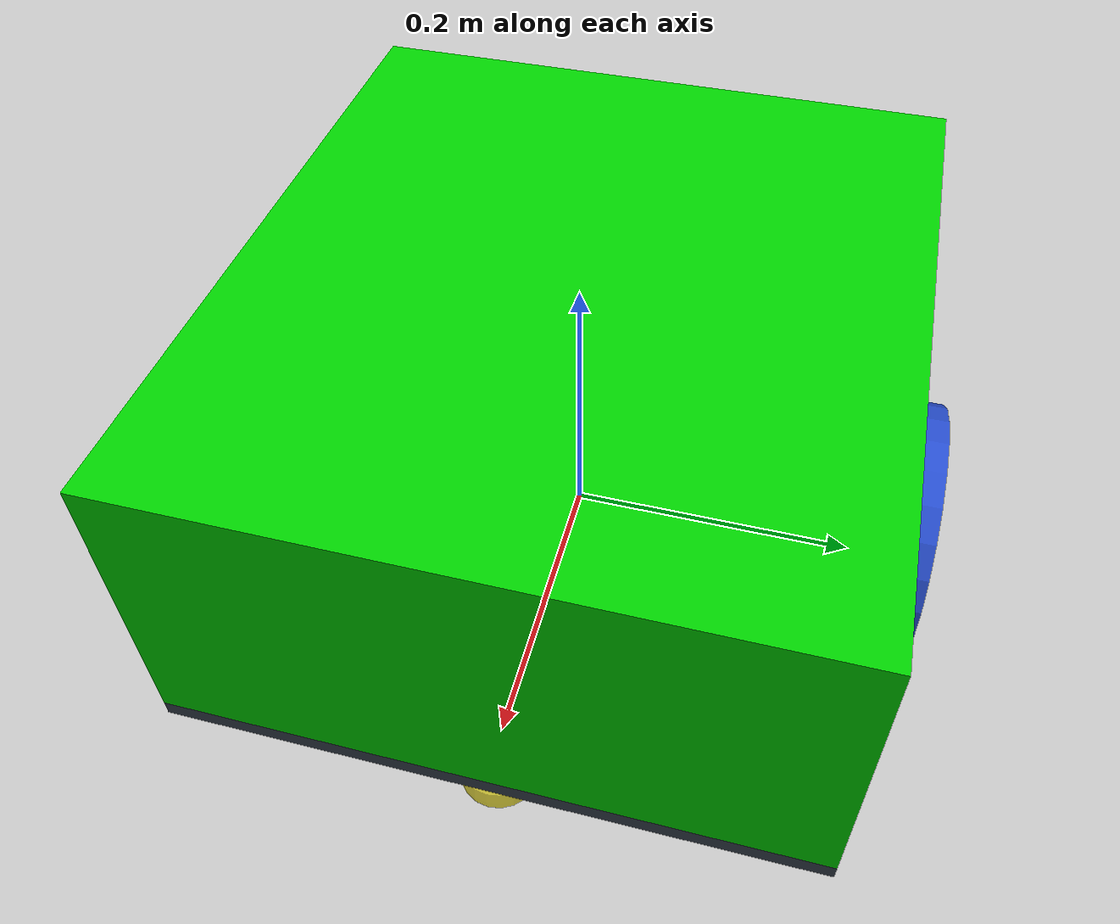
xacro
<?xml version="1.0" ?>
<robot name="mouse" xmlns:xacro="http://www.ros.org/wiki/xacro">
  <material name="black">
    <color rgba="0.0 0.0 0.0 1.0"/>
  </material>
  <material name="blue">
    <color rgba="0.203125 0.23828125 0.28515625 1.0"/>
  </material>
  <material name="green">
    <color rgba="0.0 0.8 0.0 1.0"/>
  </material>
  <material name="grey">
    <color rgba="0.2 0.2 0.2 1.0"/>
  </material>
  <material name="orange">
    <color rgba="1.0 0.423529411765 0.0392156862745 1.0"/>
  </material>
  <material name="brown">
    <color rgba="0.870588235294 0.811764705882 0.764705882353 1.0"/>
  </material>
  <material name="red">
    <color rgba="0.80078125 0.12890625 0.1328125 1.0"/>
  </material>
  <material name="white">
    <color rgba="1.0 1.0 1.0 1.0"/>
  </material>

  <gazebo reference="link_chassis">
    <material>Gazebo/Orange</material>
  </gazebo>
  <gazebo reference="link_caster">
    <material>Gazebo/Gray</material>
  </gazebo>
  <gazebo reference="link_left_wheel">
    <material>Gazebo/Blue</material>
  </gazebo>
  <gazebo reference="link_right_wheel">
    <material>Gazebo/Blue</material>
  </gazebo>

  <!-- ROBOT DESCRIPTION -->
  <!-- Chassis -->
  <link name="chassis_base">
    <collision name="collision_chassis">
      <origin rpy="0 0 0" xyz="0 0 0"/>
      <geometry>
        <box size="0.48 0.432 0.012"/>
      </geometry>
    </collision>
    <visual>
      <origin rpy="0 0 0" xyz="0 0 0"/>
      <geometry>
        <box size="0.48 0.432 0.012"/>
      </geometry>
      <material name="blue"/>
    </visual>
  </link>

  <link name="chassis_inertia">
    <inertial>
      <mass value="0.2"/>
      <origin rpy="0 0 0" xyz="0 0 0"/>
      <inertia ixx="0.0038424" ixy="0" ixz="0" iyy="0.0038424" iyz="0" izz="0.00768"/>
    </inertial>
  </link>

  <joint name="fixed_inertia" type="fixed">
    <origin rpy="0 0 0" xyz="0 0 0"/>
    <parent link="chassis_base"/>
    <child link="chassis_inertia"/>
  </joint>

  <link name="chassis_sensors">
    <inertial>
      <mass value="0.5"/>
      <origin rpy="0 0 0" xyz="0 0 0.111"/>
      <inertia ixx="0.003" ixy="0" ixz="0" iyy="0.0048" iyz="0" izz="0.003"/>
    </inertial>
    <collision name="collision_chassis">
      <origin rpy="0 0 0" xyz="0 0 0.111"/>
      <geometry>
        <box size="0.48 0.432 0.21"/>
      </geometry>
    </collision>
    <visual>
      <origin rpy="0 0 0" xyz="0 0 0.111"/>
      <geometry>
        <box size="0.48 0.432 0.21"/>
      </geometry>
      <material name="green"/>
    </visual>
  </link>

  <joint name="fixed_base" type="fixed">
    <origin rpy="0 0 0" xyz="0 0 0"/>
    <parent link="chassis_base"/>
    <child link="chassis_sensors"/>
  </joint>

  <!-- Front castor wheel -->
  <link name="fcastor_wheel">
    <collision>
      <origin rpy="0 0 0" xyz="0 0 -0.02775"/>
      <geometry>
        <sphere radius="0.02775"/>
      </geometry>
    </collision>
    <visual>
      <origin rpy="0 0 0" xyz="0 0 -0.02775"/>
      <geometry>
        <sphere radius="0.02775"/>
      </geometry>
    </visual>
    <inertial>
      <origin rpy="0 0 0" xyz="0 0 -0.02775"/>
      <mass value="0.1" />
      <inertia ixx="0.000014516" ixy="0.0" ixz="0.0" iyy="0.000014516" iyz="0.0" izz="0.000014516"/>
    </inertial>
  </link>

  <joint name="base__fcastor_wheel" type="continuous">
    <parent link="chassis_base"/>
    <child link="fcastor_wheel"/>
    <origin xyz="0.21 0 0" rpy="0 0 0"/>
    <axis xyz="0 0 1"/>
  </joint>

  <!-- Back castor wheel -->
  <link name="bcastor_wheel">
    <collision>
      <origin rpy="0 0 0" xyz="0 0 -0.02775"/>
      <geometry>
        <sphere radius="0.02775"/>
      </geometry>
    </collision>
    <visual>
      <origin rpy="0 0 0" xyz="0 0 -0.02775"/>
      <geometry>
        <sphere radius="0.02775"/>
      </geometry>
    </visual>
    <inertial>
      <origin rpy="0 0 0" xyz="0 0 -0.02775"/>
      <mass value="0.1" />
      <inertia ixx="0.000014516" ixy="0.0" ixz="0.0" iyy="0.000014516" iyz="0.0" izz="0.000014516"/>
    </inertial>
  </link>

  <joint name="base__bcastor_wheel" type="continuous">
    <parent link="chassis_base"/>
    <child link="bcastor_wheel"/>
    <origin xyz="-0.21 0 0" rpy="0 0 0"/>
    <axis xyz="0 0 1"/>
  </joint>

  <!-- Right wheel -->
  <link name="link_right_wheel">
    <inertial>
      <mass value="0.12"/>
      <origin rpy="1.570796 0 0" xyz="0 0 0"/>
      <inertia ixx="0.000252" ixy="0" ixz="0" iyy="0.000252" iyz="0" izz="0.000486"/>
    </inertial>
    <collision name="link_right_wheel_collision">
      <origin rpy="1.570796 0 0" xyz="0 0 0"/>
      <geometry>
        <cylinder length="0.03" radius="0.09"/>
      </geometry>
    </collision>
    <visual name="link_right_wheel_visual">
      <origin rpy="1.570796 0 0" xyz="0 0 0"/>
      <geometry>
        <cylinder length="0.03" radius="0.09"/>
      </geometry>
    </visual>
  </link>

  <joint name="joint_right_wheel" type="continuous">
    <origin rpy="0 0 0" xyz="0 0.231 0.0345"/>
    <child link="link_right_wheel"/>
    <parent link="chassis_base"/>
    <axis rpy="0 0 0" xyz="0 1 0"/>
    <limit effort="10000" velocity="1000"/>
    <joint_properties damping="1.0" friction="1.0"/>
  </joint>

  <!-- Left wheel -->
  <link name="link_left_wheel">
    <inertial>
      <mass value="0.12"/>
      <origin rpy="1.570796 0 0" xyz="0 0 0"/>
      <inertia ixx="0.000252" ixy="0" ixz="0" iyy="0.000252" iyz="0" izz="0.000486"/>
    </inertial>
    <collision name="link_left_wheel_collision">
      <origin rpy="1.570796 0 0" xyz="0 0 0"/>
      <geometry>
        <cylinder length="0.03" radius="0.09"/>
      </geometry>
    </collision>
    <visual name="link_left_wheel_visual">
      <origin rpy="1.570796 0 0" xyz="0 0 0"/>
      <geometry>
        <cylinder length="0.03" radius="0.09"/>
      </geometry>
    </visual>
  </link>

  <joint name="joint_left_wheel" type="continuous">
    <origin rpy="0 0 0" xyz="0 -0.231 0.0345"/>
    <child link="link_left_wheel"/>
    <parent link="chassis_base"/>
    <axis rpy="0 0 0" xyz="0 1 0"/>
    <limit effort="10000" velocity="1000"/>
    <joint_properties damping="1.0" friction="1.0"/>
  </joint>

  <!-- IMU Sensor -->
  <link name="imu_link"/>

  <joint name="imu_joint" type="fixed">
    <parent link="chassis_base"/>
    <child link="imu_link"/>
    <origin xyz="0 0 0" rpy="0 0 0"/>
  </joint>

  <gazebo reference="imu_link">
    <sensor type="imu" name="imu">
      <always_on>true</always_on>
      <visualize>true</visualize>
    </sensor>
    <material>Gazebo/Grey</material>
  </gazebo>

  <gazebo>
    <plugin name="imu_plugin" filename="libgazebo_ros_imu.so">
      <alwaysOn>true</alwaysOn>
      <bodyName>imu_link</bodyName>
      <frameName>imu_link</frameName>
      <topicName>imu</topicName>
      <serviceName>imu_service</serviceName>
      <gaussianNoise>0.0</gaussianNoise>
      <updateRate>200</updateRate>
      <imu>
        <noise>
          <type>gaussian</type>
          <rate>
            <mean>0.0</mean>
            <stddev>2e-4</stddev>
            <bias_mean>0.0000075</bias_mean>
            <bias_stddev>0.0000008</bias_stddev>
          </rate>
          <accel>
            <mean>0.0</mean>
            <stddev>1.7e-2</stddev>
            <bias_mean>0.1</bias_mean>
            <bias_stddev>0.001</bias_stddev>
          </accel>
        </noise>
      </imu>
    </plugin>
  </gazebo>

  <!-- Controller -->
  <gazebo>
    <plugin name="mouse_controller" filename="libgazebo_ros_diff_drive.so">
      <commandTopic>cmd_vel</commandTopic>
      <odometryTopic>odom</odometryTopic>
      <odometryFrame>odom</odometryFrame>
      <odometrySource>world</odometrySource>
      <publishOdomTF>true</publishOdomTF>
      <robotBaseFrame>chassis_base</robotBaseFrame>
      <publishWheelTF>false</publishWheelTF>
      <publishTf>true</publishTf>
      <publishWheelJointState>true</publishWheelJointState>
      <legacyMode>false</legacyMode>
      <updateRate>30</updateRate>
      <leftJoint>joint_left_wheel</leftJoint>
      <rightJoint>joint_right_wheel</rightJoint>
      <wheelSeparation>0.4635</wheelSeparation>
      <wheelDiameter>0.18</wheelDiameter>
      <wheelAcceleration>1</wheelAcceleration>
      <wheelTorque>30</wheelTorque>
      <rosDebugLevel>na</rosDebugLevel>
    </plugin>
  </gazebo>
</robot>
